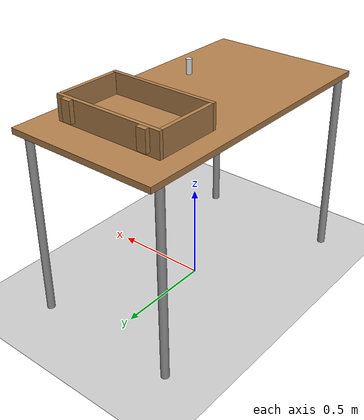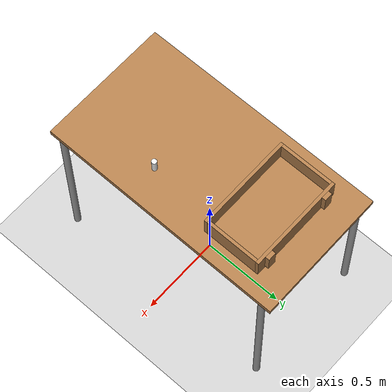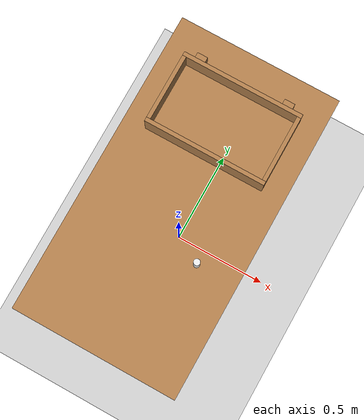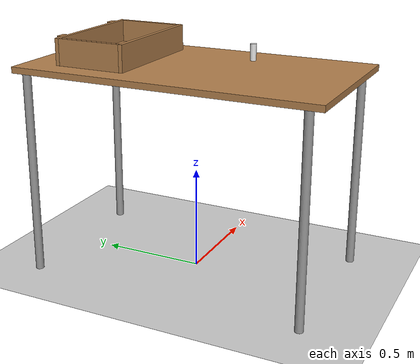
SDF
<sdf version="1.6">
 <world name="default">
  <light name="sun" type="directional">
   <pose>0 0 10 0 -0 0</pose>
   <diffuse>0.8 0.8 0.8 1</diffuse>
   <specular>0.2 0.2 0.2 1</specular>
   <attenuation>
    <range>1000</range>
    <constant>0.9</constant>
    <linear>0.01</linear>
    <quadratic>0.001</quadratic>
   </attenuation>
   <direction>-0.5 0.1 -0.9</direction>
  </light>
  <model name="ground_plane">
   <static>1</static>
   <link name="link">
    <collision name="collision">
     <geometry><plane><normal>0 0 1</normal><size>100 100</size></plane></geometry>
     <surface>
      <contact><collide_bitmask>65535</collide_bitmask></contact>
      <friction><ode><mu>100</mu><mu2>50</mu2></ode></friction>
     </surface>
    </collision>
    <visual name="visual">
     <cast_shadows>0</cast_shadows>
     <geometry><plane><normal>0 0 1</normal><size>100 100</size></plane></geometry>
     <material>
      <script><uri>file://media/materials/scripts/gazebo.material</uri><name>Gazebo/Grey</name></script>
     </material>
    </visual>
   </link>
  </model>
  <gravity>0 0 -9.8</gravity>
  <magnetic_field>6e-06 2.3e-05 -4.2e-05</magnetic_field>
  <atmosphere type="adiabatic"/>
  <physics name="default_physics" default="0" type="ode">
   <max_step_size>0.001</max_step_size>
   <real_time_factor>1</real_time_factor>
   <real_time_update_rate>1000</real_time_update_rate>
  </physics>
  <scene><ambient>0.4 0.4 0.4 1</ambient><background>0.7 0.7 0.7 1</background><shadows>1</shadows></scene>
  <audio><device>default</device></audio>
  <spherical_coordinates>
   <surface_model>EARTH_WGS84</surface_model>
   <latitude_deg>0</latitude_deg>
   <longitude_deg>0</longitude_deg>
   <elevation>0</elevation>
   <heading_deg>0</heading_deg>
  </spherical_coordinates>
  <model name="table">
   <pose>0 0 0 0 0 1.57</pose>
   <static>1</static>
   <link name="link">
    <collision name="surface">
     <pose>0 0 1 0 -0 0</pose>
     <geometry><box><size>1.5 0.8 0.03</size></box></geometry>
     <surface><friction><ode><mu>0.6</mu><mu2>0.6</mu2></ode></friction></surface>
    </collision>
    <visual name="visual1">
     <pose>0 0 1 0 -0 0</pose>
     <geometry><box><size>1.5 0.8 0.03</size></box></geometry>
     <material>
      <script><uri>file://media/materials/scripts/gazebo.material</uri><name>Gazebo/Wood</name></script>
     </material>
    </visual>
    <collision name="front_left_leg">
     <pose>0.68 0.38 0.5 0 -0 0</pose>
     <geometry><cylinder><radius>0.02</radius><length>1</length></cylinder></geometry>
    </collision>
    <visual name="front_left_leg">
     <pose>0.68 0.38 0.5 0 -0 0</pose>
     <geometry><cylinder><radius>0.02</radius><length>1</length></cylinder></geometry>
     <material>
      <script><uri>file://media/materials/scripts/gazebo.material</uri><name>Gazebo/Grey</name></script>
     </material>
    </visual>
    <collision name="front_right_leg">
     <pose>0.68 -0.38 0.5 0 -0 0</pose>
     <geometry><cylinder><radius>0.02</radius><length>1</length></cylinder></geometry>
    </collision>
    <visual name="front_right_leg">
     <pose>0.68 -0.38 0.5 0 -0 0</pose>
     <geometry><cylinder><radius>0.02</radius><length>1</length></cylinder></geometry>
     <material>
      <script><uri>file://media/materials/scripts/gazebo.material</uri><name>Gazebo/Grey</name></script>
     </material>
    </visual>
    <collision name="back_right_leg">
     <pose>-0.68 -0.38 0.5 0 -0 0</pose>
     <geometry><cylinder><radius>0.02</radius><length>1</length></cylinder></geometry>
    </collision>
    <visual name="back_right_leg">
     <pose>-0.68 -0.38 0.5 0 -0 0</pose>
     <geometry><cylinder><radius>0.02</radius><length>1</length></cylinder></geometry>
     <material>
      <script><uri>file://media/materials/scripts/gazebo.material</uri><name>Gazebo/Grey</name></script>
     </material>
    </visual>
    <collision name="back_left_leg">
     <pose>-0.68 0.38 0.5 0 -0 0</pose>
     <geometry><cylinder><radius>0.02</radius><length>1</length></cylinder></geometry>
    </collision>
    <visual name="back_left_leg">
     <pose>-0.68 0.38 0.5 0 -0 0</pose>
     <geometry><cylinder><radius>0.02</radius><length>1</length></cylinder></geometry>
     <material>
      <script><uri>file://media/materials/scripts/gazebo.material</uri><name>Gazebo/Grey</name></script>
     </material>
    </visual>
   </link>
   <pose>0.713401 0.374488 0 0 -0 0</pose>
  </model>
  <model name="wooden_peg">
   <link name="link">
    <pose>0.2 -0.2 1.06 0 -0 0</pose>
    <inertial>
     <mass>0.0175</mass>
     <inertia>
      <ixx>9.74923e-06</ixx>
      <ixy>0</ixy>
      <ixz>0</ixz>
      <iyy>9.74923e-06</iyy>
      <iyz>0</iyz>
      <izz>8.31797e-07</izz>
     </inertia>
    </inertial>
    <collision name="collision">
     <geometry><cylinder><radius>0.015</radius><length>0.08</length></cylinder></geometry>
     <surface>
      <contact>
       <poissons_ratio>0.347</poissons_ratio>
       <elastic_modulus>8.8e+09</elastic_modulus>
       <ode><kp>100000</kp><kd>100</kd><max_vel>100</max_vel><min_depth>0.001</min_depth></ode>
      </contact>
      <friction>
       <torsional>
        <coefficient>1</coefficient>
        <use_patch_radius>0</use_patch_radius>
        <surface_radius>0.01</surface_radius>
       </torsional>
      </friction>
     </surface>
    </collision>
    <visual name="visual">
     <geometry><cylinder><radius>0.015</radius><length>0.08</length></cylinder></geometry>
     <material>
      <script><uri>file://media/materials/scripts/gazebo.material</uri><name>Gazebo/White</name></script>
     </material>
    </visual>
   </link>
  </model>
  <model name="wooden_case">
   <link name="base">
    <pose>-0 0 0.024 0 -0 0</pose>
    <inertial>
     <pose>-0.022184 0 0.171592 0 -0 0</pose>
     <mass>3.96264</mass>
     <inertia>
      <ixx>0.213536</ixx>
      <ixy>0</ixy>
      <ixz>0.00077938</ixz>
      <iyy>0.0708943</iyy>
      <iyz>0</iyz>
      <izz>0.154604</izz>
     </inertia>
    </inertial>
    <visual name="visual_back">
     <pose>-0.053975 0 0.1778 0 -0 0</pose>
     <geometry><box><size>0.01905 0.5461 0.3175</size></box></geometry>
     <material>
      <script><uri>file://media/materials/scripts/gazebo.material</uri><name>Gazebo/Wood</name></script>
      <shader type="vertex"><normal_map>__default__</normal_map></shader>
     </material>
    </visual>
    <visual name="visual_bottom">
     <pose>0 0 0.009525 0 -0 0</pose>
     <geometry><box><size>0.127 0.5842 0.01905</size></box></geometry>
     <material>
      <script><uri>file://media/materials/scripts/gazebo.material</uri><name>Gazebo/Wood</name></script>
      <shader type="vertex"><normal_map>__default__</normal_map></shader>
     </material>
    </visual>
    <visual name="visual_top">
     <pose>0 0 0.346075 0 -0 0</pose>
     <geometry><box><size>0.127 0.5842 0.01905</size></box></geometry>
     <material>
      <script><uri>file://media/materials/scripts/gazebo.material</uri><name>Gazebo/Wood</name></script>
      <shader type="vertex"><normal_map>__default__</normal_map></shader>
     </material>
    </visual>
    <visual name="visual_left">
     <pose>0 -0.282575 0.1778 0 -0 0</pose>
     <geometry><box><size>0.127 0.01905 0.3175</size></box></geometry>
     <material>
      <script><uri>file://media/materials/scripts/gazebo.material</uri><name>Gazebo/Wood</name></script>
      <shader type="vertex"><normal_map>__default__</normal_map></shader>
     </material>
    </visual>
    <visual name="visual_right">
     <pose>0 0.282575 0.1778 0 -0 0</pose>
     <geometry><box><size>0.127 0.01905 0.3175</size></box></geometry>
     <material>
      <script><uri>file://media/materials/scripts/gazebo.material</uri><name>Gazebo/Wood</name></script>
      <shader type="vertex"><normal_map>__default__</normal_map></shader>
     </material>
    </visual>
    <visual name="visual_block_left">
     <pose>0.0095 -0.2151 -0.012 0 -0 0</pose>
     <geometry><box><size>0.108 0.05 0.024</size></box></geometry>
     <material>
      <script><uri>file://media/materials/scripts/gazebo.material</uri><name>Gazebo/Wood</name></script>
      <shader type="vertex"><normal_map>__default__</normal_map></shader>
     </material>
    </visual>
    <visual name="visual_block_right">
     <pose>0.0095 0.2151 -0.012 0 -0 0</pose>
     <geometry><box><size>0.108 0.05 0.024</size></box></geometry>
     <material>
      <script><uri>file://media/materials/scripts/gazebo.material</uri><name>Gazebo/Wood</name></script>
      <shader type="vertex"><normal_map>__default__</normal_map></shader>
     </material>
    </visual>
    <collision name="collision_back">
     <pose>-0.053975 0 0.1778 0 -0 0</pose>
     <geometry><box><size>0.01905 0.5461 0.3175</size></box></geometry>
     <surface>
      <friction>
       <ode><mu>1</mu><mu2>1</mu2><fdir1>0 0 0</fdir1><slip1>0</slip1><slip2>0</slip2></ode>
       <torsional>
        <coefficient>1</coefficient>
        <patch_radius>0</patch_radius>
        <surface_radius>0.01</surface_radius>
        <use_patch_radius>0</use_patch_radius>
        <ode><slip>0</slip></ode>
       </torsional>
      </friction>
      <bounce><restitution_coefficient>0</restitution_coefficient><threshold>1e+06</threshold></bounce>
      <contact>
       <collide_without_contact>0</collide_without_contact>
       <collide_without_contact_bitmask>1</collide_without_contact_bitmask>
       <collide_bitmask>1</collide_bitmask>
       <ode>
        <soft_cfm>0</soft_cfm>
        <soft_erp>0.2</soft_erp>
        <kp>100000</kp>
        <kd>100</kd>
        <max_vel>100</max_vel>
        <min_depth>0.001</min_depth>
       </ode>
       <bullet>
        <split_impulse>1</split_impulse>
        <split_impulse_penetration_threshold>-0.01</split_impulse_penetration_threshold>
        <soft_cfm>0</soft_cfm>
        <soft_erp>0.2</soft_erp>
        <kp>100000</kp>
        <kd>100</kd>
       </bullet>
      </contact>
     </surface>
    </collision>
    <collision name="collision_bottom">
     <pose>0 0 0.009525 0 -0 0</pose>
     <geometry><box><size>0.127 0.5842 0.01905</size></box></geometry>
     <surface>
      <friction>
       <ode><mu>1</mu><mu2>1</mu2><fdir1>0 0 0</fdir1><slip1>0</slip1><slip2>0</slip2></ode>
       <torsional>
        <coefficient>1</coefficient>
        <patch_radius>0</patch_radius>
        <surface_radius>0.01</surface_radius>
        <use_patch_radius>0</use_patch_radius>
        <ode><slip>0</slip></ode>
       </torsional>
      </friction>
      <bounce><restitution_coefficient>0</restitution_coefficient><threshold>1e+06</threshold></bounce>
      <contact>
       <collide_without_contact>0</collide_without_contact>
       <collide_without_contact_bitmask>1</collide_without_contact_bitmask>
       <collide_bitmask>1</collide_bitmask>
       <ode>
        <soft_cfm>0</soft_cfm>
        <soft_erp>0.2</soft_erp>
        <kp>100000</kp>
        <kd>100</kd>
        <max_vel>100</max_vel>
        <min_depth>0.001</min_depth>
       </ode>
       <bullet>
        <split_impulse>1</split_impulse>
        <split_impulse_penetration_threshold>-0.01</split_impulse_penetration_threshold>
        <soft_cfm>0</soft_cfm>
        <soft_erp>0.2</soft_erp>
        <kp>100000</kp>
        <kd>100</kd>
       </bullet>
      </contact>
     </surface>
    </collision>
    <collision name="collision_top">
     <pose>0 0 0.346075 0 -0 0</pose>
     <geometry><box><size>0.127 0.5842 0.01905</size></box></geometry>
     <surface>
      <friction>
       <ode><mu>1</mu><mu2>1</mu2><fdir1>0 0 0</fdir1><slip1>0</slip1><slip2>0</slip2></ode>
       <torsional>
        <coefficient>1</coefficient>
        <patch_radius>0</patch_radius>
        <surface_radius>0.01</surface_radius>
        <use_patch_radius>0</use_patch_radius>
        <ode><slip>0</slip></ode>
       </torsional>
      </friction>
      <bounce><restitution_coefficient>0</restitution_coefficient><threshold>1e+06</threshold></bounce>
      <contact>
       <collide_without_contact>0</collide_without_contact>
       <collide_without_contact_bitmask>1</collide_without_contact_bitmask>
       <collide_bitmask>1</collide_bitmask>
       <ode>
        <soft_cfm>0</soft_cfm>
        <soft_erp>0.2</soft_erp>
        <kp>100000</kp>
        <kd>100</kd>
        <max_vel>100</max_vel>
        <min_depth>0.001</min_depth>
       </ode>
       <bullet>
        <split_impulse>1</split_impulse>
        <split_impulse_penetration_threshold>-0.01</split_impulse_penetration_threshold>
        <soft_cfm>0</soft_cfm>
        <soft_erp>0.2</soft_erp>
        <kp>100000</kp>
        <kd>100</kd>
       </bullet>
      </contact>
     </surface>
    </collision>
    <collision name="collision_left">
     <pose>0 -0.282575 0.1778 0 -0 0</pose>
     <geometry><box><size>0.127 0.01905 0.3175</size></box></geometry>
     <surface>
      <friction>
       <ode><mu>1</mu><mu2>1</mu2><fdir1>0 0 0</fdir1><slip1>0</slip1><slip2>0</slip2></ode>
       <torsional>
        <coefficient>1</coefficient>
        <patch_radius>0</patch_radius>
        <surface_radius>0.01</surface_radius>
        <use_patch_radius>0</use_patch_radius>
        <ode><slip>0</slip></ode>
       </torsional>
      </friction>
      <bounce><restitution_coefficient>0</restitution_coefficient><threshold>1e+06</threshold></bounce>
      <contact>
       <collide_without_contact>0</collide_without_contact>
       <collide_without_contact_bitmask>1</collide_without_contact_bitmask>
       <collide_bitmask>1</collide_bitmask>
       <ode>
        <soft_cfm>0</soft_cfm>
        <soft_erp>0.2</soft_erp>
        <kp>100000</kp>
        <kd>100</kd>
        <max_vel>100</max_vel>
        <min_depth>0.001</min_depth>
       </ode>
       <bullet>
        <split_impulse>1</split_impulse>
        <split_impulse_penetration_threshold>-0.01</split_impulse_penetration_threshold>
        <soft_cfm>0</soft_cfm>
        <soft_erp>0.2</soft_erp>
        <kp>100000</kp>
        <kd>100</kd>
       </bullet>
      </contact>
     </surface>
    </collision>
    <collision name="collision_right">
     <pose>0 0.282575 0.1778 0 -0 0</pose>
     <geometry><box><size>0.127 0.01905 0.3175</size></box></geometry>
     <surface>
      <friction>
       <ode><mu>1</mu><mu2>1</mu2><fdir1>0 0 0</fdir1><slip1>0</slip1><slip2>0</slip2></ode>
       <torsional>
        <coefficient>1</coefficient>
        <patch_radius>0</patch_radius>
        <surface_radius>0.01</surface_radius>
        <use_patch_radius>0</use_patch_radius>
        <ode><slip>0</slip></ode>
       </torsional>
      </friction>
      <bounce><restitution_coefficient>0</restitution_coefficient><threshold>1e+06</threshold></bounce>
      <contact>
       <collide_without_contact>0</collide_without_contact>
       <collide_without_contact_bitmask>1</collide_without_contact_bitmask>
       <collide_bitmask>1</collide_bitmask>
       <ode>
        <soft_cfm>0</soft_cfm>
        <soft_erp>0.2</soft_erp>
        <kp>100000</kp>
        <kd>100</kd>
        <max_vel>100</max_vel>
        <min_depth>0.001</min_depth>
       </ode>
       <bullet>
        <split_impulse>1</split_impulse>
        <split_impulse_penetration_threshold>-0.01</split_impulse_penetration_threshold>
        <soft_cfm>0</soft_cfm>
        <soft_erp>0.2</soft_erp>
        <kp>100000</kp>
        <kd>100</kd>
       </bullet>
      </contact>
     </surface>
    </collision>
    <collision name="collision_block_left">
     <pose>0.0095 -0.2151 -0.012 0 -0 0</pose>
     <geometry><box><size>0.108 0.05 0.024</size></box></geometry>
     <surface>
      <friction>
       <ode><mu>1</mu><mu2>1</mu2><fdir1>0 0 0</fdir1><slip1>0</slip1><slip2>0</slip2></ode>
       <torsional>
        <coefficient>1</coefficient>
        <patch_radius>0</patch_radius>
        <surface_radius>0.01</surface_radius>
        <use_patch_radius>0</use_patch_radius>
        <ode><slip>0</slip></ode>
       </torsional>
      </friction>
      <bounce><restitution_coefficient>0</restitution_coefficient><threshold>1e+06</threshold></bounce>
      <contact>
       <collide_without_contact>0</collide_without_contact>
       <collide_without_contact_bitmask>1</collide_without_contact_bitmask>
       <collide_bitmask>1</collide_bitmask>
       <ode>
        <soft_cfm>0</soft_cfm>
        <soft_erp>0.2</soft_erp>
        <kp>100000</kp>
        <kd>100</kd>
        <max_vel>100</max_vel>
        <min_depth>0.001</min_depth>
       </ode>
       <bullet>
        <split_impulse>1</split_impulse>
        <split_impulse_penetration_threshold>-0.01</split_impulse_penetration_threshold>
        <soft_cfm>0</soft_cfm>
        <soft_erp>0.2</soft_erp>
        <kp>100000</kp>
        <kd>100</kd>
       </bullet>
      </contact>
     </surface>
    </collision>
    <collision name="collision_block_right">
     <pose>0.0095 0.2151 -0.012 0 -0 0</pose>
     <geometry><box><size>0.108 0.05 0.024</size></box></geometry>
     <surface>
      <friction>
       <ode><mu>1</mu><mu2>1</mu2><fdir1>0 0 0</fdir1><slip1>0</slip1><slip2>0</slip2></ode>
       <torsional>
        <coefficient>1</coefficient>
        <patch_radius>0</patch_radius>
        <surface_radius>0.01</surface_radius>
        <use_patch_radius>0</use_patch_radius>
        <ode><slip>0</slip></ode>
       </torsional>
      </friction>
      <bounce><restitution_coefficient>0</restitution_coefficient><threshold>1e+06</threshold></bounce>
      <contact>
       <collide_without_contact>0</collide_without_contact>
       <collide_without_contact_bitmask>1</collide_without_contact_bitmask>
       <collide_bitmask>1</collide_bitmask>
       <ode>
        <soft_cfm>0</soft_cfm>
        <soft_erp>0.2</soft_erp>
        <kp>100000</kp>
        <kd>100</kd>
        <max_vel>100</max_vel>
        <min_depth>0.001</min_depth>
       </ode>
       <bullet>
        <split_impulse>1</split_impulse>
        <split_impulse_penetration_threshold>-0.01</split_impulse_penetration_threshold>
        <soft_cfm>0</soft_cfm>
        <soft_erp>0.2</soft_erp>
        <kp>100000</kp>
        <kd>100</kd>
       </bullet>
      </contact>
     </surface>
    </collision>
   </link>
   <static>1</static>
   <pose>0 0.6 1.08 1.57 -1.57 0</pose>
  </model>
 </world>
</sdf>
